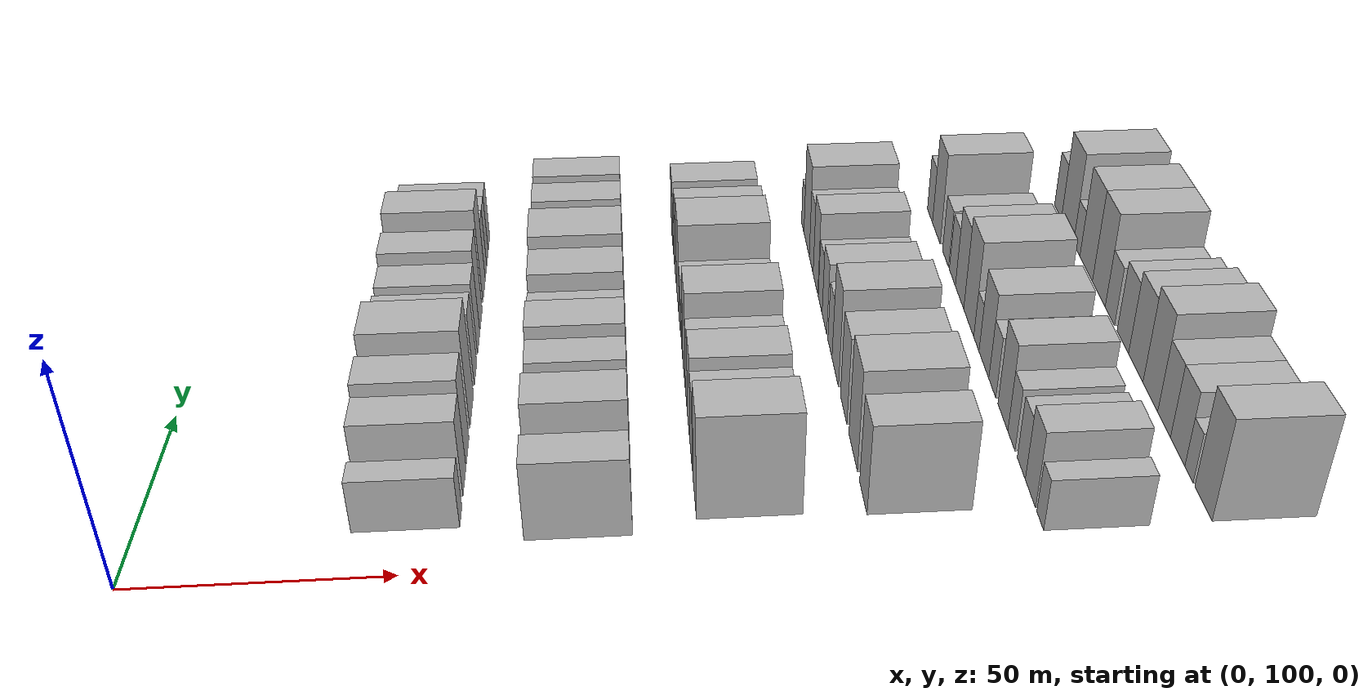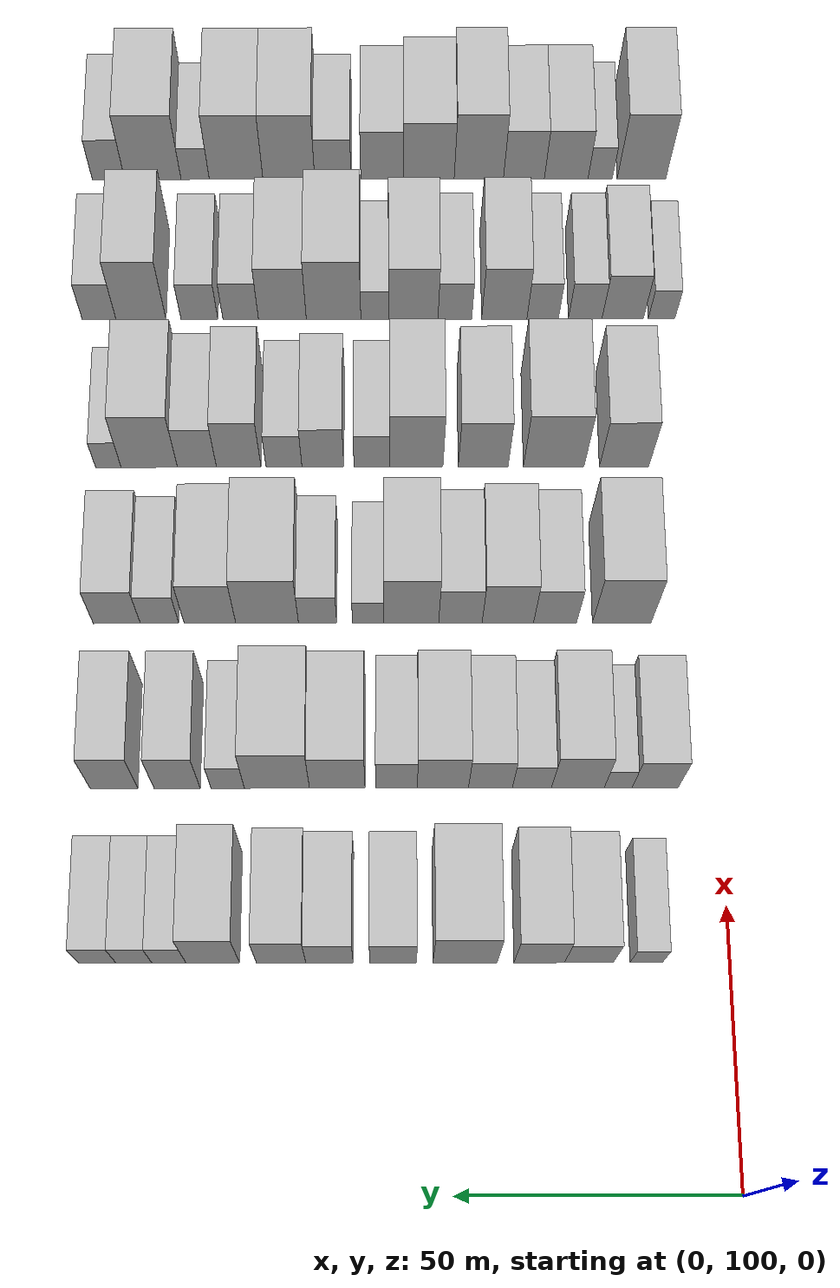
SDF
<sdf version="1.6">
 <world name="default">
  <model name="building_70">
   <static>1</static>
   <pose>50.0000 115.0078 0 0.000000 0.000000 0.000000</pose>
   <link name="link">
    <pose>0 0 6.00 0 0 0</pose>
    <collision name="collision"><geometry><box><size>20.0000 5.8340 12.0000</size></box></geometry></collision>
    <visual name="visual">
     <cast_shadows>0</cast_shadows>
     <geometry><box><size>20.0000 5.8340 12.0000</size></box></geometry>
     <material>
      <script>
       <uri>model://HANNAS_wall/materials/scripts</uri>
       <uri>model://HANNAS_wall/materials/textures</uri>
       <name>vrc/HANNAS_wall</name>
      </script>
     </material>
    </visual>
   </link>
  </model>
  <model name="building_71">
   <static>1</static>
   <pose>50.0000 125.2915 0 0.000000 0.000000 0.000000</pose>
   <link name="link">
    <pose>0 0 9.00 0 0 0</pose>
    <collision name="collision"><geometry><box><size>20.0000 8.7334 18.0000</size></box></geometry></collision>
    <visual name="visual">
     <cast_shadows>0</cast_shadows>
     <geometry><box><size>20.0000 8.7334 18.0000</size></box></geometry>
     <material>
      <script>
       <uri>model://HANNAS_wall/materials/scripts</uri>
       <uri>model://HANNAS_wall/materials/textures</uri>
       <name>vrc/HANNAS_wall</name>
      </script>
     </material>
    </visual>
   </link>
  </model>
  <model name="building_72">
   <static>1</static>
   <pose>50.0000 134.1864 0 0.000000 0.000000 0.000000</pose>
   <link name="link">
    <pose>0 0 10.50 0 0 0</pose>
    <collision name="collision"><geometry><box><size>20.0000 9.0564 21.0000</size></box></geometry></collision>
    <visual name="visual">
     <cast_shadows>0</cast_shadows>
     <geometry><box><size>20.0000 9.0564 21.0000</size></box></geometry>
     <material>
      <script>
       <uri>model://HANNAS_wall/materials/scripts</uri>
       <uri>model://HANNAS_wall/materials/textures</uri>
       <name>vrc/HANNAS_wall</name>
      </script>
     </material>
    </visual>
   </link>
  </model>
  <model name="building_73">
   <static>1</static>
   <pose>50.0000 147.4751 0 0.000000 0.000000 0.000000</pose>
   <link name="link">
    <pose>0 0 12.00 0 0 0</pose>
    <collision name="collision"><geometry><box><size>20.0000 11.5210 24.0000</size></box></geometry></collision>
    <visual name="visual">
     <cast_shadows>0</cast_shadows>
     <geometry><box><size>20.0000 11.5210 24.0000</size></box></geometry>
     <material>
      <script>
       <uri>model://HANNAS_wall/materials/scripts</uri>
       <uri>model://HANNAS_wall/materials/textures</uri>
       <name>vrc/HANNAS_wall</name>
      </script>
     </material>
    </visual>
   </link>
  </model>
  <model name="building_74">
   <static>1</static>
   <pose>50.0000 160.3697 0 0.000000 0.000000 0.000000</pose>
   <link name="link">
    <pose>0 0 9.00 0 0 0</pose>
    <collision name="collision"><geometry><box><size>20.0000 8.2682 18.0000</size></box></geometry></collision>
    <visual name="visual">
     <cast_shadows>0</cast_shadows>
     <geometry><box><size>20.0000 8.2682 18.0000</size></box></geometry>
     <material>
      <script>
       <uri>model://HANNAS_wall/materials/scripts</uri>
       <uri>model://HANNAS_wall/materials/textures</uri>
       <name>vrc/HANNAS_wall</name>
      </script>
     </material>
    </visual>
   </link>
  </model>
  <model name="building_75">
   <static>1</static>
   <pose>50.0000 171.7448 0 0.000000 0.000000 0.000000</pose>
   <link name="link">
    <pose>0 0 9.00 0 0 0</pose>
    <collision name="collision"><geometry><box><size>20.0000 8.4820 18.0000</size></box></geometry></collision>
    <visual name="visual">
     <cast_shadows>0</cast_shadows>
     <geometry><box><size>20.0000 8.4820 18.0000</size></box></geometry>
     <material>
      <script>
       <uri>model://HANNAS_wall/materials/scripts</uri>
       <uri>model://HANNAS_wall/materials/textures</uri>
       <name>vrc/HANNAS_wall</name>
      </script>
     </material>
    </visual>
   </link>
  </model>
  <model name="building_76">
   <static>1</static>
   <pose>50.0000 180.3990 0 0.000000 0.000000 0.000000</pose>
   <link name="link">
    <pose>0 0 10.50 0 0 0</pose>
    <collision name="collision"><geometry><box><size>20.0000 8.8264 21.0000</size></box></geometry></collision>
    <visual name="visual">
     <cast_shadows>0</cast_shadows>
     <geometry><box><size>20.0000 8.8264 21.0000</size></box></geometry>
     <material>
      <script>
       <uri>model://HANNAS_wall/materials/scripts</uri>
       <uri>model://HANNAS_wall/materials/textures</uri>
       <name>vrc/HANNAS_wall</name>
      </script>
     </material>
    </visual>
   </link>
  </model>
  <model name="building_77">
   <static>1</static>
   <pose>50.0000 192.6142 0 0.000000 0.000000 0.000000</pose>
   <link name="link">
    <pose>0 0 12.00 0 0 0</pose>
    <collision name="collision"><geometry><box><size>20.0000 9.6039 24.0000</size></box></geometry></collision>
    <visual name="visual">
     <cast_shadows>0</cast_shadows>
     <geometry><box><size>20.0000 9.6039 24.0000</size></box></geometry>
     <material>
      <script>
       <uri>model://HANNAS_wall/materials/scripts</uri>
       <uri>model://HANNAS_wall/materials/textures</uri>
       <name>vrc/HANNAS_wall</name>
      </script>
     </material>
    </visual>
   </link>
  </model>
  <model name="building_78">
   <static>1</static>
   <pose>50.0000 200.4673 0 0.000000 0.000000 0.000000</pose>
   <link name="link">
    <pose>0 0 7.50 0 0 0</pose>
    <collision name="collision"><geometry><box><size>20.0000 6.1022 15.0000</size></box></geometry></collision>
    <visual name="visual">
     <cast_shadows>0</cast_shadows>
     <geometry><box><size>20.0000 6.1022 15.0000</size></box></geometry>
     <material>
      <script>
       <uri>model://HANNAS_wall/materials/scripts</uri>
       <uri>model://HANNAS_wall/materials/textures</uri>
       <name>vrc/HANNAS_wall</name>
      </script>
     </material>
    </visual>
   </link>
  </model>
  <model name="building_79">
   <static>1</static>
   <pose>50.0000 206.7341 0 0.000000 0.000000 0.000000</pose>
   <link name="link">
    <pose>0 0 7.50 0 0 0</pose>
    <collision name="collision"><geometry><box><size>20.0000 6.4315 15.0000</size></box></geometry></collision>
    <visual name="visual">
     <cast_shadows>0</cast_shadows>
     <geometry><box><size>20.0000 6.4315 15.0000</size></box></geometry>
     <material>
      <script>
       <uri>model://HANNAS_wall/materials/scripts</uri>
       <uri>model://HANNAS_wall/materials/textures</uri>
       <name>vrc/HANNAS_wall</name>
      </script>
     </material>
    </visual>
   </link>
  </model>
  <model name="building_80">
   <static>1</static>
   <pose>50.0000 213.3071 0 0.000000 0.000000 0.000000</pose>
   <link name="link">
    <pose>0 0 7.50 0 0 0</pose>
    <collision name="collision"><geometry><box><size>20.0000 6.7145 15.0000</size></box></geometry></collision>
    <visual name="visual">
     <cast_shadows>0</cast_shadows>
     <geometry><box><size>20.0000 6.7145 15.0000</size></box></geometry>
     <material>
      <script>
       <uri>model://HANNAS_wall/materials/scripts</uri>
       <uri>model://HANNAS_wall/materials/textures</uri>
       <name>vrc/HANNAS_wall</name>
      </script>
     </material>
    </visual>
   </link>
  </model>
  <model name="building_189">
   <static>1</static>
   <pose>82.0000 111.9641 0 0.000000 0.000000 0.000000</pose>
   <link name="link">
    <pose>0 0 9.00 0 0 0</pose>
    <collision name="collision"><geometry><box><size>20.0000 8.5202 18.0000</size></box></geometry></collision>
    <visual name="visual">
     <cast_shadows>0</cast_shadows>
     <geometry><box><size>20.0000 8.5202 18.0000</size></box></geometry>
     <material>
      <script>
       <uri>model://HANNAS_wall/materials/scripts</uri>
       <uri>model://HANNAS_wall/materials/textures</uri>
       <name>vrc/HANNAS_wall</name>
      </script>
     </material>
    </visual>
   </link>
  </model>
  <model name="building_190">
   <static>1</static>
   <pose>82.0000 118.7828 0 0.000000 0.000000 0.000000</pose>
   <link name="link">
    <pose>0 0 6.00 0 0 0</pose>
    <collision name="collision"><geometry><box><size>20.0000 5.1172 12.0000</size></box></geometry></collision>
    <visual name="visual">
     <cast_shadows>0</cast_shadows>
     <geometry><box><size>20.0000 5.1172 12.0000</size></box></geometry>
     <material>
      <script>
       <uri>model://HANNAS_wall/materials/scripts</uri>
       <uri>model://HANNAS_wall/materials/textures</uri>
       <name>vrc/HANNAS_wall</name>
      </script>
     </material>
    </visual>
   </link>
  </model>
  <model name="building_191">
   <static>1</static>
   <pose>82.0000 126.2091 0 0.000000 0.000000 0.000000</pose>
   <link name="link">
    <pose>0 0 10.50 0 0 0</pose>
    <collision name="collision"><geometry><box><size>20.0000 9.7354 21.0000</size></box></geometry></collision>
    <visual name="visual">
     <cast_shadows>0</cast_shadows>
     <geometry><box><size>20.0000 9.7354 21.0000</size></box></geometry>
     <material>
      <script>
       <uri>model://HANNAS_wall/materials/scripts</uri>
       <uri>model://HANNAS_wall/materials/textures</uri>
       <name>vrc/HANNAS_wall</name>
      </script>
     </material>
    </visual>
   </link>
  </model>
  <model name="building_192">
   <static>1</static>
   <pose>82.0000 134.6804 0 0.000000 0.000000 0.000000</pose>
   <link name="link">
    <pose>0 0 7.50 0 0 0</pose>
    <collision name="collision"><geometry><box><size>20.0000 7.2072 15.0000</size></box></geometry></collision>
    <visual name="visual">
     <cast_shadows>0</cast_shadows>
     <geometry><box><size>20.0000 7.2072 15.0000</size></box></geometry>
     <material>
      <script>
       <uri>model://HANNAS_wall/materials/scripts</uri>
       <uri>model://HANNAS_wall/materials/textures</uri>
       <name>vrc/HANNAS_wall</name>
      </script>
     </material>
    </visual>
   </link>
  </model>
  <model name="building_193">
   <static>1</static>
   <pose>82.0000 142.3409 0 0.000000 0.000000 0.000000</pose>
   <link name="link">
    <pose>0 0 9.00 0 0 0</pose>
    <collision name="collision"><geometry><box><size>20.0000 8.1139 18.0000</size></box></geometry></collision>
    <visual name="visual">
     <cast_shadows>0</cast_shadows>
     <geometry><box><size>20.0000 8.1139 18.0000</size></box></geometry>
     <material>
      <script>
       <uri>model://HANNAS_wall/materials/scripts</uri>
       <uri>model://HANNAS_wall/materials/textures</uri>
       <name>vrc/HANNAS_wall</name>
      </script>
     </material>
    </visual>
   </link>
  </model>
  <model name="building_194">
   <static>1</static>
   <pose>82.0000 151.1372 0 0.000000 0.000000 0.000000</pose>
   <link name="link">
    <pose>0 0 10.50 0 0 0</pose>
    <collision name="collision"><geometry><box><size>20.0000 9.4787 21.0000</size></box></geometry></collision>
    <visual name="visual">
     <cast_shadows>0</cast_shadows>
     <geometry><box><size>20.0000 9.4787 21.0000</size></box></geometry>
     <material>
      <script>
       <uri>model://HANNAS_wall/materials/scripts</uri>
       <uri>model://HANNAS_wall/materials/textures</uri>
       <name>vrc/HANNAS_wall</name>
      </script>
     </material>
    </visual>
   </link>
  </model>
  <model name="building_195">
   <static>1</static>
   <pose>82.0000 159.6681 0 0.000000 0.000000 0.000000</pose>
   <link name="link">
    <pose>0 0 9.00 0 0 0</pose>
    <collision name="collision"><geometry><box><size>20.0000 7.5831 18.0000</size></box></geometry></collision>
    <visual name="visual">
     <cast_shadows>0</cast_shadows>
     <geometry><box><size>20.0000 7.5831 18.0000</size></box></geometry>
     <material>
      <script>
       <uri>model://HANNAS_wall/materials/scripts</uri>
       <uri>model://HANNAS_wall/materials/textures</uri>
       <name>vrc/HANNAS_wall</name>
      </script>
     </material>
    </visual>
   </link>
  </model>
  <model name="building_196">
   <static>1</static>
   <pose>82.0000 170.5790 0 0.000000 0.000000 0.000000</pose>
   <link name="link">
    <pose>0 0 10.50 0 0 0</pose>
    <collision name="collision"><geometry><box><size>20.0000 10.2387 21.0000</size></box></geometry></collision>
    <visual name="visual">
     <cast_shadows>0</cast_shadows>
     <geometry><box><size>20.0000 10.2387 21.0000</size></box></geometry>
     <material>
      <script>
       <uri>model://HANNAS_wall/materials/scripts</uri>
       <uri>model://HANNAS_wall/materials/textures</uri>
       <name>vrc/HANNAS_wall</name>
      </script>
     </material>
    </visual>
   </link>
  </model>
  <model name="building_197">
   <static>1</static>
   <pose>82.0000 181.6932 0 0.000000 0.000000 0.000000</pose>
   <link name="link">
    <pose>0 0 12.00 0 0 0</pose>
    <collision name="collision"><geometry><box><size>20.0000 11.9898 24.0000</size></box></geometry></collision>
    <visual name="visual">
     <cast_shadows>0</cast_shadows>
     <geometry><box><size>20.0000 11.9898 24.0000</size></box></geometry>
     <material>
      <script>
       <uri>model://HANNAS_wall/materials/scripts</uri>
       <uri>model://HANNAS_wall/materials/textures</uri>
       <name>vrc/HANNAS_wall</name>
      </script>
     </material>
    </visual>
   </link>
  </model>
  <model name="building_198">
   <static>1</static>
   <pose>82.0000 190.7617 0 0.000000 0.000000 0.000000</pose>
   <link name="link">
    <pose>0 0 7.50 0 0 0</pose>
    <collision name="collision"><geometry><box><size>20.0000 6.1471 15.0000</size></box></geometry></collision>
    <visual name="visual">
     <cast_shadows>0</cast_shadows>
     <geometry><box><size>20.0000 6.1471 15.0000</size></box></geometry>
     <material>
      <script>
       <uri>model://HANNAS_wall/materials/scripts</uri>
       <uri>model://HANNAS_wall/materials/textures</uri>
       <name>vrc/HANNAS_wall</name>
      </script>
     </material>
    </visual>
   </link>
  </model>
  <model name="building_199">
   <static>1</static>
   <pose>82.0000 200.0816 0 0.000000 0.000000 0.000000</pose>
   <link name="link">
    <pose>0 0 10.50 0 0 0</pose>
    <collision name="collision"><geometry><box><size>20.0000 8.4927 21.0000</size></box></geometry></collision>
    <visual name="visual">
     <cast_shadows>0</cast_shadows>
     <geometry><box><size>20.0000 8.4927 21.0000</size></box></geometry>
     <material>
      <script>
       <uri>model://HANNAS_wall/materials/scripts</uri>
       <uri>model://HANNAS_wall/materials/textures</uri>
       <name>vrc/HANNAS_wall</name>
      </script>
     </material>
    </visual>
   </link>
  </model>
  <model name="building_200">
   <static>1</static>
   <pose>82.0000 211.7220 0 0.000000 0.000000 0.000000</pose>
   <link name="link">
    <pose>0 0 10.50 0 0 0</pose>
    <collision name="collision"><geometry><box><size>20.0000 8.7880 21.0000</size></box></geometry></collision>
    <visual name="visual">
     <cast_shadows>0</cast_shadows>
     <geometry><box><size>20.0000 8.7880 21.0000</size></box></geometry>
     <material>
      <script>
       <uri>model://HANNAS_wall/materials/scripts</uri>
       <uri>model://HANNAS_wall/materials/textures</uri>
       <name>vrc/HANNAS_wall</name>
      </script>
     </material>
    </visual>
   </link>
  </model>
  <model name="building_310">
   <static>1</static>
   <pose>114.0000 116.8429 0 0.000000 0.000000 0.000000</pose>
   <link name="link">
    <pose>0 0 12.00 0 0 0</pose>
    <collision name="collision"><geometry><box><size>20.0000 11.1367 24.0000</size></box></geometry></collision>
    <visual name="visual">
     <cast_shadows>0</cast_shadows>
     <geometry><box><size>20.0000 11.1367 24.0000</size></box></geometry>
     <material>
      <script>
       <uri>model://HANNAS_wall/materials/scripts</uri>
       <uri>model://HANNAS_wall/materials/textures</uri>
       <name>vrc/HANNAS_wall</name>
      </script>
     </material>
    </visual>
   </link>
  </model>
  <model name="building_311">
   <static>1</static>
   <pose>114.0000 129.4948 0 0.000000 0.000000 0.000000</pose>
   <link name="link">
    <pose>0 0 9.00 0 0 0</pose>
    <collision name="collision"><geometry><box><size>20.0000 8.1670 18.0000</size></box></geometry></collision>
    <visual name="visual">
     <cast_shadows>0</cast_shadows>
     <geometry><box><size>20.0000 8.1670 18.0000</size></box></geometry>
     <material>
      <script>
       <uri>model://HANNAS_wall/materials/scripts</uri>
       <uri>model://HANNAS_wall/materials/textures</uri>
       <name>vrc/HANNAS_wall</name>
      </script>
     </material>
    </visual>
   </link>
  </model>
  <model name="building_312">
   <static>1</static>
   <pose>114.0000 138.4637 0 0.000000 0.000000 0.000000</pose>
   <link name="link">
    <pose>0 0 10.50 0 0 0</pose>
    <collision name="collision"><geometry><box><size>20.0000 9.7710 21.0000</size></box></geometry></collision>
    <visual name="visual">
     <cast_shadows>0</cast_shadows>
     <geometry><box><size>20.0000 9.7710 21.0000</size></box></geometry>
     <material>
      <script>
       <uri>model://HANNAS_wall/materials/scripts</uri>
       <uri>model://HANNAS_wall/materials/textures</uri>
       <name>vrc/HANNAS_wall</name>
      </script>
     </material>
    </visual>
   </link>
  </model>
  <model name="building_313">
   <static>1</static>
   <pose>114.0000 147.4659 0 0.000000 0.000000 0.000000</pose>
   <link name="link">
    <pose>0 0 9.00 0 0 0</pose>
    <collision name="collision"><geometry><box><size>20.0000 8.2333 18.0000</size></box></geometry></collision>
    <visual name="visual">
     <cast_shadows>0</cast_shadows>
     <geometry><box><size>20.0000 8.2333 18.0000</size></box></geometry>
     <material>
      <script>
       <uri>model://HANNAS_wall/materials/scripts</uri>
       <uri>model://HANNAS_wall/materials/textures</uri>
       <name>vrc/HANNAS_wall</name>
      </script>
     </material>
    </visual>
   </link>
  </model>
  <model name="building_314">
   <static>1</static>
   <pose>114.0000 156.7750 0 0.000000 0.000000 0.000000</pose>
   <link name="link">
    <pose>0 0 12.00 0 0 0</pose>
    <collision name="collision"><geometry><box><size>20.0000 10.3850 24.0000</size></box></geometry></collision>
    <visual name="visual">
     <cast_shadows>0</cast_shadows>
     <geometry><box><size>20.0000 10.3850 24.0000</size></box></geometry>
     <material>
      <script>
       <uri>model://HANNAS_wall/materials/scripts</uri>
       <uri>model://HANNAS_wall/materials/textures</uri>
       <name>vrc/HANNAS_wall</name>
      </script>
     </material>
    </visual>
   </link>
  </model>
  <model name="building_315">
   <static>1</static>
   <pose>114.0000 164.9296 0 0.000000 0.000000 0.000000</pose>
   <link name="link">
    <pose>0 0 6.00 0 0 0</pose>
    <collision name="collision"><geometry><box><size>20.0000 5.9242 12.0000</size></box></geometry></collision>
    <visual name="visual">
     <cast_shadows>0</cast_shadows>
     <geometry><box><size>20.0000 5.9242 12.0000</size></box></geometry>
     <material>
      <script>
       <uri>model://HANNAS_wall/materials/scripts</uri>
       <uri>model://HANNAS_wall/materials/textures</uri>
       <name>vrc/HANNAS_wall</name>
      </script>
     </material>
    </visual>
   </link>
  </model>
  <model name="building_316">
   <static>1</static>
   <pose>114.0000 174.5195 0 0.000000 0.000000 0.000000</pose>
   <link name="link">
    <pose>0 0 7.50 0 0 0</pose>
    <collision name="collision"><geometry><box><size>20.0000 7.2556 15.0000</size></box></geometry></collision>
    <visual name="visual">
     <cast_shadows>0</cast_shadows>
     <geometry><box><size>20.0000 7.2556 15.0000</size></box></geometry>
     <material>
      <script>
       <uri>model://HANNAS_wall/materials/scripts</uri>
       <uri>model://HANNAS_wall/materials/textures</uri>
       <name>vrc/HANNAS_wall</name>
      </script>
     </material>
    </visual>
   </link>
  </model>
  <model name="building_317">
   <static>1</static>
   <pose>114.0000 184.0973 0 0.000000 0.000000 0.000000</pose>
   <link name="link">
    <pose>0 0 12.00 0 0 0</pose>
    <collision name="collision"><geometry><box><size>20.0000 11.9001 24.0000</size></box></geometry></collision>
    <visual name="visual">
     <cast_shadows>0</cast_shadows>
     <geometry><box><size>20.0000 11.9001 24.0000</size></box></geometry>
     <material>
      <script>
       <uri>model://HANNAS_wall/materials/scripts</uri>
       <uri>model://HANNAS_wall/materials/textures</uri>
       <name>vrc/HANNAS_wall</name>
      </script>
     </material>
    </visual>
   </link>
  </model>
  <model name="building_318">
   <static>1</static>
   <pose>114.0000 194.9424 0 0.000000 0.000000 0.000000</pose>
   <link name="link">
    <pose>0 0 10.50 0 0 0</pose>
    <collision name="collision"><geometry><box><size>20.0000 9.7902 21.0000</size></box></geometry></collision>
    <visual name="visual">
     <cast_shadows>0</cast_shadows>
     <geometry><box><size>20.0000 9.7902 21.0000</size></box></geometry>
     <material>
      <script>
       <uri>model://HANNAS_wall/materials/scripts</uri>
       <uri>model://HANNAS_wall/materials/textures</uri>
       <name>vrc/HANNAS_wall</name>
      </script>
     </material>
    </visual>
   </link>
  </model>
  <model name="building_319">
   <static>1</static>
   <pose>114.0000 204.4847 0 0.000000 0.000000 0.000000</pose>
   <link name="link">
    <pose>0 0 7.50 0 0 0</pose>
    <collision name="collision"><geometry><box><size>20.0000 7.2944 15.0000</size></box></geometry></collision>
    <visual name="visual">
     <cast_shadows>0</cast_shadows>
     <geometry><box><size>20.0000 7.2944 15.0000</size></box></geometry>
     <material>
      <script>
       <uri>model://HANNAS_wall/materials/scripts</uri>
       <uri>model://HANNAS_wall/materials/textures</uri>
       <name>vrc/HANNAS_wall</name>
      </script>
     </material>
    </visual>
   </link>
  </model>
  <model name="building_320">
   <static>1</static>
   <pose>114.0000 212.5988 0 0.000000 0.000000 0.000000</pose>
   <link name="link">
    <pose>0 0 9.00 0 0 0</pose>
    <collision name="collision"><geometry><box><size>20.0000 8.9340 18.0000</size></box></geometry></collision>
    <visual name="visual">
     <cast_shadows>0</cast_shadows>
     <geometry><box><size>20.0000 8.9340 18.0000</size></box></geometry>
     <material>
      <script>
       <uri>model://HANNAS_wall/materials/scripts</uri>
       <uri>model://HANNAS_wall/materials/textures</uri>
       <name>vrc/HANNAS_wall</name>
      </script>
     </material>
    </visual>
   </link>
  </model>
  <model name="building_428">
   <static>1</static>
   <pose>146.0000 115.1080 0 0.000000 0.000000 0.000000</pose>
   <link name="link">
    <pose>0 0 10.50 0 0 0</pose>
    <collision name="collision"><geometry><box><size>20.0000 9.6081 21.0000</size></box></geometry></collision>
    <visual name="visual">
     <cast_shadows>0</cast_shadows>
     <geometry><box><size>20.0000 9.6081 21.0000</size></box></geometry>
     <material>
      <script>
       <uri>model://HANNAS_wall/materials/scripts</uri>
       <uri>model://HANNAS_wall/materials/textures</uri>
       <name>vrc/HANNAS_wall</name>
      </script>
     </material>
    </visual>
   </link>
  </model>
  <model name="building_429">
   <static>1</static>
   <pose>146.0000 128.8257 0 0.000000 0.000000 0.000000</pose>
   <link name="link">
    <pose>0 0 12.00 0 0 0</pose>
    <collision name="collision"><geometry><box><size>20.0000 11.8273 24.0000</size></box></geometry></collision>
    <visual name="visual">
     <cast_shadows>0</cast_shadows>
     <geometry><box><size>20.0000 11.8273 24.0000</size></box></geometry>
     <material>
      <script>
       <uri>model://HANNAS_wall/materials/scripts</uri>
       <uri>model://HANNAS_wall/materials/textures</uri>
       <name>vrc/HANNAS_wall</name>
      </script>
     </material>
    </visual>
   </link>
  </model>
  <model name="building_430">
   <static>1</static>
   <pose>146.0000 142.5920 0 0.000000 0.000000 0.000000</pose>
   <link name="link">
    <pose>0 0 10.50 0 0 0</pose>
    <collision name="collision"><geometry><box><size>20.0000 9.7052 21.0000</size></box></geometry></collision>
    <visual name="visual">
     <cast_shadows>0</cast_shadows>
     <geometry><box><size>20.0000 9.7052 21.0000</size></box></geometry>
     <material>
      <script>
       <uri>model://HANNAS_wall/materials/scripts</uri>
       <uri>model://HANNAS_wall/materials/textures</uri>
       <name>vrc/HANNAS_wall</name>
      </script>
     </material>
    </visual>
   </link>
  </model>
  <model name="building_431">
   <static>1</static>
   <pose>146.0000 155.6401 0 0.000000 0.000000 0.000000</pose>
   <link name="link">
    <pose>0 0 12.00 0 0 0</pose>
    <collision name="collision"><geometry><box><size>20.0000 10.3911 24.0000</size></box></geometry></collision>
    <visual name="visual">
     <cast_shadows>0</cast_shadows>
     <geometry><box><size>20.0000 10.3911 24.0000</size></box></geometry>
     <material>
      <script>
       <uri>model://HANNAS_wall/materials/scripts</uri>
       <uri>model://HANNAS_wall/materials/textures</uri>
       <name>vrc/HANNAS_wall</name>
      </script>
     </material>
    </visual>
   </link>
  </model>
  <model name="building_432">
   <static>1</static>
   <pose>146.0000 164.2872 0 0.000000 0.000000 0.000000</pose>
   <link name="link">
    <pose>0 0 7.50 0 0 0</pose>
    <collision name="collision"><geometry><box><size>20.0000 6.9031 15.0000</size></box></geometry></collision>
    <visual name="visual">
     <cast_shadows>0</cast_shadows>
     <geometry><box><size>20.0000 6.9031 15.0000</size></box></geometry>
     <material>
      <script>
       <uri>model://HANNAS_wall/materials/scripts</uri>
       <uri>model://HANNAS_wall/materials/textures</uri>
       <name>vrc/HANNAS_wall</name>
      </script>
     </material>
    </visual>
   </link>
  </model>
  <model name="building_433">
   <static>1</static>
   <pose>146.0000 173.8214 0 0.000000 0.000000 0.000000</pose>
   <link name="link">
    <pose>0 0 9.00 0 0 0</pose>
    <collision name="collision"><geometry><box><size>20.0000 8.1653 18.0000</size></box></geometry></collision>
    <visual name="visual">
     <cast_shadows>0</cast_shadows>
     <geometry><box><size>20.0000 8.1653 18.0000</size></box></geometry>
     <material>
      <script>
       <uri>model://HANNAS_wall/materials/scripts</uri>
       <uri>model://HANNAS_wall/materials/textures</uri>
       <name>vrc/HANNAS_wall</name>
      </script>
     </material>
    </visual>
   </link>
  </model>
  <model name="building_434">
   <static>1</static>
   <pose>146.0000 181.3954 0 0.000000 0.000000 0.000000</pose>
   <link name="link">
    <pose>0 0 7.50 0 0 0</pose>
    <collision name="collision"><geometry><box><size>20.0000 6.9827 15.0000</size></box></geometry></collision>
    <visual name="visual">
     <cast_shadows>0</cast_shadows>
     <geometry><box><size>20.0000 6.9827 15.0000</size></box></geometry>
     <material>
      <script>
       <uri>model://HANNAS_wall/materials/scripts</uri>
       <uri>model://HANNAS_wall/materials/textures</uri>
       <name>vrc/HANNAS_wall</name>
      </script>
     </material>
    </visual>
   </link>
  </model>
  <model name="building_435">
   <static>1</static>
   <pose>146.0000 190.2271 0 0.000000 0.000000 0.000000</pose>
   <link name="link">
    <pose>0 0 10.50 0 0 0</pose>
    <collision name="collision"><geometry><box><size>20.0000 8.6808 21.0000</size></box></geometry></collision>
    <visual name="visual">
     <cast_shadows>0</cast_shadows>
     <geometry><box><size>20.0000 8.6808 21.0000</size></box></geometry>
     <material>
      <script>
       <uri>model://HANNAS_wall/materials/scripts</uri>
       <uri>model://HANNAS_wall/materials/textures</uri>
       <name>vrc/HANNAS_wall</name>
      </script>
     </material>
    </visual>
   </link>
  </model>
  <model name="building_436">
   <static>1</static>
   <pose>146.0000 198.3652 0 0.000000 0.000000 0.000000</pose>
   <link name="link">
    <pose>0 0 9.00 0 0 0</pose>
    <collision name="collision"><geometry><box><size>20.0000 7.5954 18.0000</size></box></geometry></collision>
    <visual name="visual">
     <cast_shadows>0</cast_shadows>
     <geometry><box><size>20.0000 7.5954 18.0000</size></box></geometry>
     <material>
      <script>
       <uri>model://HANNAS_wall/materials/scripts</uri>
       <uri>model://HANNAS_wall/materials/textures</uri>
       <name>vrc/HANNAS_wall</name>
      </script>
     </material>
    </visual>
   </link>
  </model>
  <model name="building_437">
   <static>1</static>
   <pose>146.0000 207.6608 0 0.000000 0.000000 0.000000</pose>
   <link name="link">
    <pose>0 0 12.00 0 0 0</pose>
    <collision name="collision"><geometry><box><size>20.0000 10.9957 24.0000</size></box></geometry></collision>
    <visual name="visual">
     <cast_shadows>0</cast_shadows>
     <geometry><box><size>20.0000 10.9957 24.0000</size></box></geometry>
     <material>
      <script>
       <uri>model://HANNAS_wall/materials/scripts</uri>
       <uri>model://HANNAS_wall/materials/textures</uri>
       <name>vrc/HANNAS_wall</name>
      </script>
     </material>
    </visual>
   </link>
  </model>
  <model name="building_438">
   <static>1</static>
   <pose>146.0000 215.6480 0 0.000000 0.000000 0.000000</pose>
   <link name="link">
    <pose>0 0 6.00 0 0 0</pose>
    <collision name="collision"><geometry><box><size>20.0000 4.9786 12.0000</size></box></geometry></collision>
    <visual name="visual">
     <cast_shadows>0</cast_shadows>
     <geometry><box><size>20.0000 4.9786 12.0000</size></box></geometry>
     <material>
      <script>
       <uri>model://HANNAS_wall/materials/scripts</uri>
       <uri>model://HANNAS_wall/materials/textures</uri>
       <name>vrc/HANNAS_wall</name>
      </script>
     </material>
    </visual>
   </link>
  </model>
  <model name="building_550">
   <static>1</static>
   <pose>178.0000 106.2997 0 0.000000 0.000000 0.000000</pose>
   <link name="link">
    <pose>0 0 6.00 0 0 0</pose>
    <collision name="collision"><geometry><box><size>20.0000 5.3139 12.0000</size></box></geometry></collision>
    <visual name="visual">
     <cast_shadows>0</cast_shadows>
     <geometry><box><size>20.0000 5.3139 12.0000</size></box></geometry>
     <material>
      <script>
       <uri>model://HANNAS_wall/materials/scripts</uri>
       <uri>model://HANNAS_wall/materials/textures</uri>
       <name>vrc/HANNAS_wall</name>
      </script>
     </material>
    </visual>
   </link>
  </model>
  <model name="building_551">
   <static>1</static>
   <pose>178.0000 114.0961 0 0.000000 0.000000 0.000000</pose>
   <link name="link">
    <pose>0 0 9.00 0 0 0</pose>
    <collision name="collision"><geometry><box><size>20.0000 8.2789 18.0000</size></box></geometry></collision>
    <visual name="visual">
     <cast_shadows>0</cast_shadows>
     <geometry><box><size>20.0000 8.2789 18.0000</size></box></geometry>
     <material>
      <script>
       <uri>model://HANNAS_wall/materials/scripts</uri>
       <uri>model://HANNAS_wall/materials/textures</uri>
       <name>vrc/HANNAS_wall</name>
      </script>
     </material>
    </visual>
   </link>
  </model>
  <model name="building_552">
   <static>1</static>
   <pose>178.0000 121.5983 0 0.000000 0.000000 0.000000</pose>
   <link name="link">
    <pose>0 0 7.50 0 0 0</pose>
    <collision name="collision"><geometry><box><size>20.0000 6.7254 15.0000</size></box></geometry></collision>
    <visual name="visual">
     <cast_shadows>0</cast_shadows>
     <geometry><box><size>20.0000 6.7254 15.0000</size></box></geometry>
     <material>
      <script>
       <uri>model://HANNAS_wall/materials/scripts</uri>
       <uri>model://HANNAS_wall/materials/textures</uri>
       <name>vrc/HANNAS_wall</name>
      </script>
     </material>
    </visual>
   </link>
  </model>
  <model name="building_553">
   <static>1</static>
   <pose>178.0000 130.1204 0 0.000000 0.000000 0.000000</pose>
   <link name="link">
    <pose>0 0 7.50 0 0 0</pose>
    <collision name="collision"><geometry><box><size>20.0000 6.3188 15.0000</size></box></geometry></collision>
    <visual name="visual">
     <cast_shadows>0</cast_shadows>
     <geometry><box><size>20.0000 6.3188 15.0000</size></box></geometry>
     <material>
      <script>
       <uri>model://HANNAS_wall/materials/scripts</uri>
       <uri>model://HANNAS_wall/materials/textures</uri>
       <name>vrc/HANNAS_wall</name>
      </script>
     </material>
    </visual>
   </link>
  </model>
  <model name="building_554">
   <static>1</static>
   <pose>178.0000 137.8098 0 0.000000 0.000000 0.000000</pose>
   <link name="link">
    <pose>0 0 10.50 0 0 0</pose>
    <collision name="collision"><geometry><box><size>20.0000 9.0600 21.0000</size></box></geometry></collision>
    <visual name="visual">
     <cast_shadows>0</cast_shadows>
     <geometry><box><size>20.0000 9.0600 21.0000</size></box></geometry>
     <material>
      <script>
       <uri>model://HANNAS_wall/materials/scripts</uri>
       <uri>model://HANNAS_wall/materials/textures</uri>
       <name>vrc/HANNAS_wall</name>
      </script>
     </material>
    </visual>
   </link>
  </model>
  <model name="building_555">
   <static>1</static>
   <pose>178.0000 147.7084 0 0.000000 0.000000 0.000000</pose>
   <link name="link">
    <pose>0 0 7.50 0 0 0</pose>
    <collision name="collision"><geometry><box><size>20.0000 6.7373 15.0000</size></box></geometry></collision>
    <visual name="visual">
     <cast_shadows>0</cast_shadows>
     <geometry><box><size>20.0000 6.7373 15.0000</size></box></geometry>
     <material>
      <script>
       <uri>model://HANNAS_wall/materials/scripts</uri>
       <uri>model://HANNAS_wall/materials/textures</uri>
       <name>vrc/HANNAS_wall</name>
      </script>
     </material>
    </visual>
   </link>
  </model>
  <model name="building_556">
   <static>1</static>
   <pose>178.0000 156.0380 0 0.000000 0.000000 0.000000</pose>
   <link name="link">
    <pose>0 0 10.50 0 0 0</pose>
    <collision name="collision"><geometry><box><size>20.0000 9.9219 21.0000</size></box></geometry></collision>
    <visual name="visual">
     <cast_shadows>0</cast_shadows>
     <geometry><box><size>20.0000 9.9219 21.0000</size></box></geometry>
     <material>
      <script>
       <uri>model://HANNAS_wall/materials/scripts</uri>
       <uri>model://HANNAS_wall/materials/textures</uri>
       <name>vrc/HANNAS_wall</name>
      </script>
     </material>
    </visual>
   </link>
  </model>
  <model name="building_557">
   <static>1</static>
   <pose>178.0000 163.7635 0 0.000000 0.000000 0.000000</pose>
   <link name="link">
    <pose>0 0 6.00 0 0 0</pose>
    <collision name="collision"><geometry><box><size>20.0000 5.5292 12.0000</size></box></geometry></collision>
    <visual name="visual">
     <cast_shadows>0</cast_shadows>
     <geometry><box><size>20.0000 5.5292 12.0000</size></box></geometry>
     <material>
      <script>
       <uri>model://HANNAS_wall/materials/scripts</uri>
       <uri>model://HANNAS_wall/materials/textures</uri>
       <name>vrc/HANNAS_wall</name>
      </script>
     </material>
    </visual>
   </link>
  </model>
  <model name="building_558">
   <static>1</static>
   <pose>178.0000 171.9906 0 0.000000 0.000000 0.000000</pose>
   <link name="link">
    <pose>0 0 12.00 0 0 0</pose>
    <collision name="collision"><geometry><box><size>20.0000 10.9249 24.0000</size></box></geometry></collision>
    <visual name="visual">
     <cast_shadows>0</cast_shadows>
     <geometry><box><size>20.0000 10.9249 24.0000</size></box></geometry>
     <material>
      <script>
       <uri>model://HANNAS_wall/materials/scripts</uri>
       <uri>model://HANNAS_wall/materials/textures</uri>
       <name>vrc/HANNAS_wall</name>
      </script>
     </material>
    </visual>
   </link>
  </model>
  <model name="building_559">
   <static>1</static>
   <pose>178.0000 182.2390 0 0.000000 0.000000 0.000000</pose>
   <link name="link">
    <pose>0 0 10.50 0 0 0</pose>
    <collision name="collision"><geometry><box><size>20.0000 9.5720 21.0000</size></box></geometry></collision>
    <visual name="visual">
     <cast_shadows>0</cast_shadows>
     <geometry><box><size>20.0000 9.5720 21.0000</size></box></geometry>
     <material>
      <script>
       <uri>model://HANNAS_wall/materials/scripts</uri>
       <uri>model://HANNAS_wall/materials/textures</uri>
       <name>vrc/HANNAS_wall</name>
      </script>
     </material>
    </visual>
   </link>
  </model>
  <model name="building_560">
   <static>1</static>
   <pose>178.0000 190.5851 0 0.000000 0.000000 0.000000</pose>
   <link name="link">
    <pose>0 0 7.50 0 0 0</pose>
    <collision name="collision"><geometry><box><size>20.0000 7.1202 15.0000</size></box></geometry></collision>
    <visual name="visual">
     <cast_shadows>0</cast_shadows>
     <geometry><box><size>20.0000 7.1202 15.0000</size></box></geometry>
     <material>
      <script>
       <uri>model://HANNAS_wall/materials/scripts</uri>
       <uri>model://HANNAS_wall/materials/textures</uri>
       <name>vrc/HANNAS_wall</name>
      </script>
     </material>
    </visual>
   </link>
  </model>
  <model name="building_561">
   <static>1</static>
   <pose>178.0000 198.8385 0 0.000000 0.000000 0.000000</pose>
   <link name="link">
    <pose>0 0 7.50 0 0 0</pose>
    <collision name="collision"><geometry><box><size>20.0000 7.3867 15.0000</size></box></geometry></collision>
    <visual name="visual">
     <cast_shadows>0</cast_shadows>
     <geometry><box><size>20.0000 7.3867 15.0000</size></box></geometry>
     <material>
      <script>
       <uri>model://HANNAS_wall/materials/scripts</uri>
       <uri>model://HANNAS_wall/materials/textures</uri>
       <name>vrc/HANNAS_wall</name>
      </script>
     </material>
    </visual>
   </link>
  </model>
  <model name="building_562">
   <static>1</static>
   <pose>178.0000 210.5435 0 0.000000 0.000000 0.000000</pose>
   <link name="link">
    <pose>0 0 12.00 0 0 0</pose>
    <collision name="collision"><geometry><box><size>20.0000 10.0233 24.0000</size></box></geometry></collision>
    <visual name="visual">
     <cast_shadows>0</cast_shadows>
     <geometry><box><size>20.0000 10.0233 24.0000</size></box></geometry>
     <material>
      <script>
       <uri>model://HANNAS_wall/materials/scripts</uri>
       <uri>model://HANNAS_wall/materials/textures</uri>
       <name>vrc/HANNAS_wall</name>
      </script>
     </material>
    </visual>
   </link>
  </model>
  <model name="building_563">
   <static>1</static>
   <pose>178.0000 218.9316 0 0.000000 0.000000 0.000000</pose>
   <link name="link">
    <pose>0 0 7.50 0 0 0</pose>
    <collision name="collision"><geometry><box><size>20.0000 6.7529 15.0000</size></box></geometry></collision>
    <visual name="visual">
     <cast_shadows>0</cast_shadows>
     <geometry><box><size>20.0000 6.7529 15.0000</size></box></geometry>
     <material>
      <script>
       <uri>model://HANNAS_wall/materials/scripts</uri>
       <uri>model://HANNAS_wall/materials/textures</uri>
       <name>vrc/HANNAS_wall</name>
      </script>
     </material>
    </visual>
   </link>
  </model>
  <model name="building_675">
   <static>1</static>
   <pose>210.0000 108.9255 0 0.000000 0.000000 0.000000</pose>
   <link name="link">
    <pose>0 0 12.00 0 0 0</pose>
    <collision name="collision"><geometry><box><size>20.0000 9.9890 24.0000</size></box></geometry></collision>
    <visual name="visual">
     <cast_shadows>0</cast_shadows>
     <geometry><box><size>20.0000 9.9890 24.0000</size></box></geometry>
     <material>
      <script>
       <uri>model://HANNAS_wall/materials/scripts</uri>
       <uri>model://HANNAS_wall/materials/textures</uri>
       <name>vrc/HANNAS_wall</name>
      </script>
     </material>
    </visual>
   </link>
  </model>
  <model name="building_676">
   <static>1</static>
   <pose>210.0000 117.4196 0 0.000000 0.000000 0.000000</pose>
   <link name="link">
    <pose>0 0 6.00 0 0 0</pose>
    <collision name="collision"><geometry><box><size>20.0000 4.9992 12.0000</size></box></geometry></collision>
    <visual name="visual">
     <cast_shadows>0</cast_shadows>
     <geometry><box><size>20.0000 4.9992 12.0000</size></box></geometry>
     <material>
      <script>
       <uri>model://HANNAS_wall/materials/scripts</uri>
       <uri>model://HANNAS_wall/materials/textures</uri>
       <name>vrc/HANNAS_wall</name>
      </script>
     </material>
    </visual>
   </link>
  </model>
  <model name="building_677">
   <static>1</static>
   <pose>210.0000 124.4136 0 0.000000 0.000000 0.000000</pose>
   <link name="link">
    <pose>0 0 9.00 0 0 0</pose>
    <collision name="collision"><geometry><box><size>20.0000 8.9887 18.0000</size></box></geometry></collision>
    <visual name="visual">
     <cast_shadows>0</cast_shadows>
     <geometry><box><size>20.0000 8.9887 18.0000</size></box></geometry>
     <material>
      <script>
       <uri>model://HANNAS_wall/materials/scripts</uri>
       <uri>model://HANNAS_wall/materials/textures</uri>
       <name>vrc/HANNAS_wall</name>
      </script>
     </material>
    </visual>
   </link>
  </model>
  <model name="building_678">
   <static>1</static>
   <pose>210.0000 133.1153 0 0.000000 0.000000 0.000000</pose>
   <link name="link">
    <pose>0 0 9.00 0 0 0</pose>
    <collision name="collision"><geometry><box><size>20.0000 8.4147 18.0000</size></box></geometry></collision>
    <visual name="visual">
     <cast_shadows>0</cast_shadows>
     <geometry><box><size>20.0000 8.4147 18.0000</size></box></geometry>
     <material>
      <script>
       <uri>model://HANNAS_wall/materials/scripts</uri>
       <uri>model://HANNAS_wall/materials/textures</uri>
       <name>vrc/HANNAS_wall</name>
      </script>
     </material>
    </visual>
   </link>
  </model>
  <model name="building_679">
   <static>1</static>
   <pose>210.0000 142.3853 0 0.000000 0.000000 0.000000</pose>
   <link name="link">
    <pose>0 0 12.00 0 0 0</pose>
    <collision name="collision"><geometry><box><size>20.0000 10.1253 24.0000</size></box></geometry></collision>
    <visual name="visual">
     <cast_shadows>0</cast_shadows>
     <geometry><box><size>20.0000 10.1253 24.0000</size></box></geometry>
     <material>
      <script>
       <uri>model://HANNAS_wall/materials/scripts</uri>
       <uri>model://HANNAS_wall/materials/textures</uri>
       <name>vrc/HANNAS_wall</name>
      </script>
     </material>
    </visual>
   </link>
  </model>
  <model name="building_680">
   <static>1</static>
   <pose>210.0000 152.6882 0 0.000000 0.000000 0.000000</pose>
   <link name="link">
    <pose>0 0 10.50 0 0 0</pose>
    <collision name="collision"><geometry><box><size>20.0000 10.4805 21.0000</size></box></geometry></collision>
    <visual name="visual">
     <cast_shadows>0</cast_shadows>
     <geometry><box><size>20.0000 10.4805 21.0000</size></box></geometry>
     <material>
      <script>
       <uri>model://HANNAS_wall/materials/scripts</uri>
       <uri>model://HANNAS_wall/materials/textures</uri>
       <name>vrc/HANNAS_wall</name>
      </script>
     </material>
    </visual>
   </link>
  </model>
  <model name="building_681">
   <static>1</static>
   <pose>210.0000 162.2806 0 0.000000 0.000000 0.000000</pose>
   <link name="link">
    <pose>0 0 9.00 0 0 0</pose>
    <collision name="collision"><geometry><box><size>20.0000 8.7043 18.0000</size></box></geometry></collision>
    <visual name="visual">
     <cast_shadows>0</cast_shadows>
     <geometry><box><size>20.0000 8.7043 18.0000</size></box></geometry>
     <material>
      <script>
       <uri>model://HANNAS_wall/materials/scripts</uri>
       <uri>model://HANNAS_wall/materials/textures</uri>
       <name>vrc/HANNAS_wall</name>
      </script>
     </material>
    </visual>
   </link>
  </model>
  <model name="building_682">
   <static>1</static>
   <pose>210.0000 172.3742 0 0.000000 0.000000 0.000000</pose>
   <link name="link">
    <pose>0 0 7.50 0 0 0</pose>
    <collision name="collision"><geometry><box><size>20.0000 7.4830 15.0000</size></box></geometry></collision>
    <visual name="visual">
     <cast_shadows>0</cast_shadows>
     <geometry><box><size>20.0000 7.4830 15.0000</size></box></geometry>
     <material>
      <script>
       <uri>model://HANNAS_wall/materials/scripts</uri>
       <uri>model://HANNAS_wall/materials/textures</uri>
       <name>vrc/HANNAS_wall</name>
      </script>
     </material>
    </visual>
   </link>
  </model>
  <model name="building_683">
   <static>1</static>
   <pose>210.0000 181.4363 0 0.000000 0.000000 0.000000</pose>
   <link name="link">
    <pose>0 0 12.00 0 0 0</pose>
    <collision name="collision"><geometry><box><size>20.0000 10.6412 24.0000</size></box></geometry></collision>
    <visual name="visual">
     <cast_shadows>0</cast_shadows>
     <geometry><box><size>20.0000 10.6412 24.0000</size></box></geometry>
     <material>
      <script>
       <uri>model://HANNAS_wall/materials/scripts</uri>
       <uri>model://HANNAS_wall/materials/textures</uri>
       <name>vrc/HANNAS_wall</name>
      </script>
     </material>
    </visual>
   </link>
  </model>
  <model name="building_684">
   <static>1</static>
   <pose>210.0000 192.2698 0 0.000000 0.000000 0.000000</pose>
   <link name="link">
    <pose>0 0 12.00 0 0 0</pose>
    <collision name="collision"><geometry><box><size>20.0000 11.0258 24.0000</size></box></geometry></collision>
    <visual name="visual">
     <cast_shadows>0</cast_shadows>
     <geometry><box><size>20.0000 11.0258 24.0000</size></box></geometry>
     <material>
      <script>
       <uri>model://HANNAS_wall/materials/scripts</uri>
       <uri>model://HANNAS_wall/materials/textures</uri>
       <name>vrc/HANNAS_wall</name>
      </script>
     </material>
    </visual>
   </link>
  </model>
  <model name="building_685">
   <static>1</static>
   <pose>210.0000 200.6876 0 0.000000 0.000000 0.000000</pose>
   <link name="link">
    <pose>0 0 6.00 0 0 0</pose>
    <collision name="collision"><geometry><box><size>20.0000 5.8098 12.0000</size></box></geometry></collision>
    <visual name="visual">
     <cast_shadows>0</cast_shadows>
     <geometry><box><size>20.0000 5.8098 12.0000</size></box></geometry>
     <material>
      <script>
       <uri>model://HANNAS_wall/materials/scripts</uri>
       <uri>model://HANNAS_wall/materials/textures</uri>
       <name>vrc/HANNAS_wall</name>
      </script>
     </material>
    </visual>
   </link>
  </model>
  <model name="building_686">
   <static>1</static>
   <pose>210.0000 209.3789 0 0.000000 0.000000 0.000000</pose>
   <link name="link">
    <pose>0 0 12.00 0 0 0</pose>
    <collision name="collision"><geometry><box><size>20.0000 11.5727 24.0000</size></box></geometry></collision>
    <visual name="visual">
     <cast_shadows>0</cast_shadows>
     <geometry><box><size>20.0000 11.5727 24.0000</size></box></geometry>
     <material>
      <script>
       <uri>model://HANNAS_wall/materials/scripts</uri>
       <uri>model://HANNAS_wall/materials/textures</uri>
       <name>vrc/HANNAS_wall</name>
      </script>
     </material>
    </visual>
   </link>
  </model>
  <model name="building_687">
   <static>1</static>
   <pose>210.0000 218.4943 0 0.000000 0.000000 0.000000</pose>
   <link name="link">
    <pose>0 0 7.50 0 0 0</pose>
    <collision name="collision"><geometry><box><size>20.0000 6.6582 15.0000</size></box></geometry></collision>
    <visual name="visual">
     <cast_shadows>0</cast_shadows>
     <geometry><box><size>20.0000 6.6582 15.0000</size></box></geometry>
     <material>
      <script>
       <uri>model://HANNAS_wall/materials/scripts</uri>
       <uri>model://HANNAS_wall/materials/textures</uri>
       <name>vrc/HANNAS_wall</name>
      </script>
     </material>
    </visual>
   </link>
  </model>
 </world>
</sdf>
